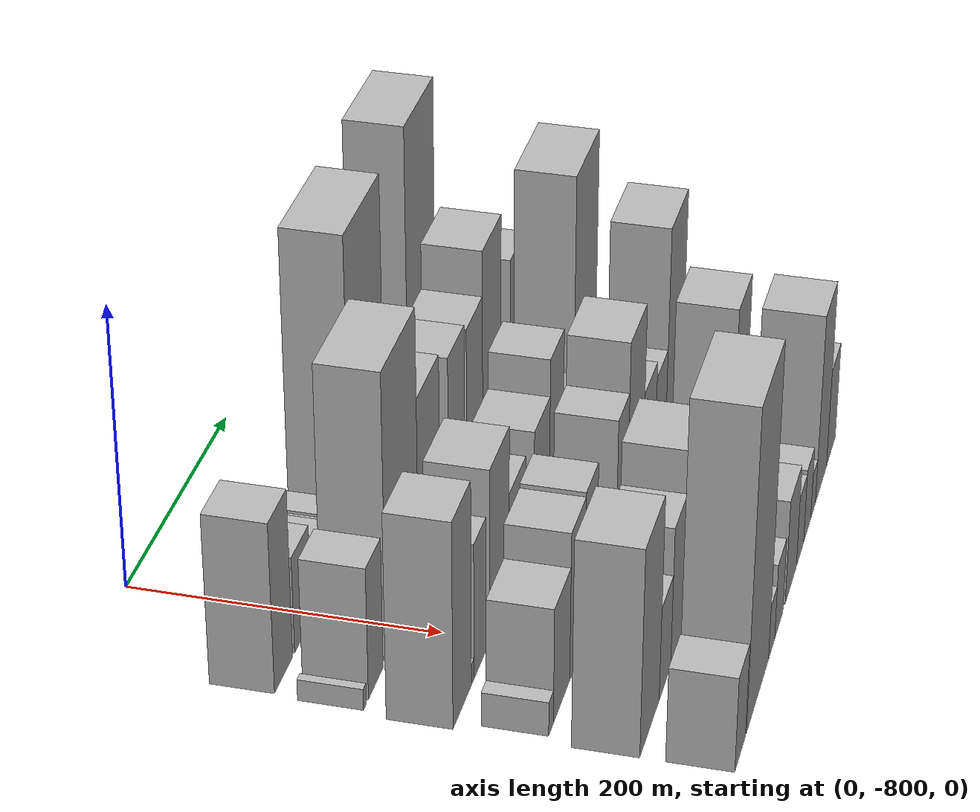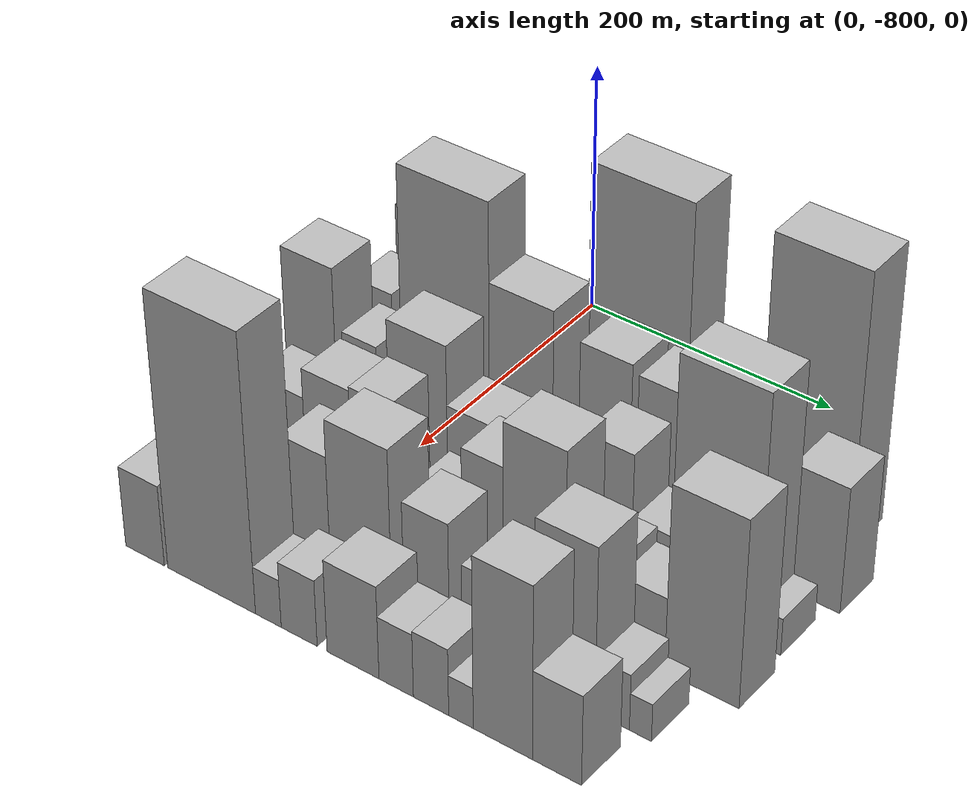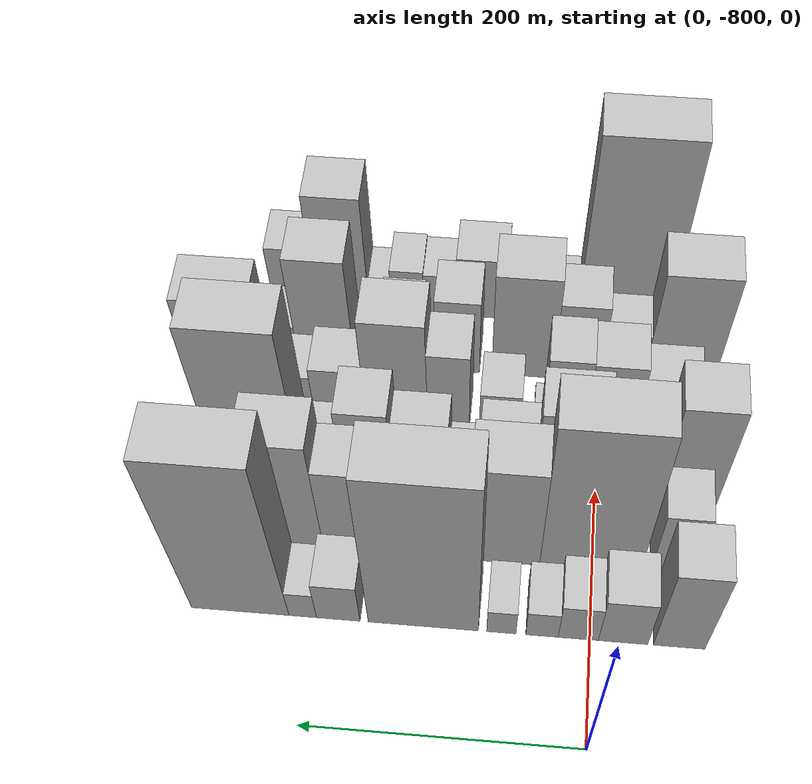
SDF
<sdf version="1.6">
 <world name="default">
  <model name="building_1">
   <static>1</static>
   <pose>100.0000 -863.6245 0 0.000000 0.000000 0.000000</pose>
   <link name="link">
    <pose>0 0 60.00 0 0 0</pose>
    <collision name="collision"><geometry><box><size>40.0000 36.7511 120.0000</size></box></geometry></collision>
    <visual name="visual">
     <cast_shadows>0</cast_shadows>
     <geometry><box><size>40.0000 36.7511 120.0000</size></box></geometry>
     <material>
      <script>
       <uri>model://HANNAS_wall/materials/scripts</uri>
       <uri>model://HANNAS_wall/materials/textures</uri>
       <name>vrc/HANNAS_wall</name>
      </script>
     </material>
    </visual>
   </link>
  </model>
  <model name="building_2">
   <static>1</static>
   <pose>100.0000 -823.6228 0 0.000000 0.000000 0.000000</pose>
   <link name="link">
    <pose>0 0 34.50 0 0 0</pose>
    <collision name="collision"><geometry><box><size>40.0000 35.2522 69.0000</size></box></geometry></collision>
    <visual name="visual">
     <cast_shadows>0</cast_shadows>
     <geometry><box><size>40.0000 35.2522 69.0000</size></box></geometry>
     <material>
      <script>
       <uri>model://HANNAS_wall/materials/scripts</uri>
       <uri>model://HANNAS_wall/materials/textures</uri>
       <name>vrc/HANNAS_wall</name>
      </script>
     </material>
    </visual>
   </link>
  </model>
  <model name="building_3">
   <static>1</static>
   <pose>100.0000 -791.5884 0 0.000000 0.000000 0.000000</pose>
   <link name="link">
    <pose>0 0 27.00 0 0 0</pose>
    <collision name="collision"><geometry><box><size>40.0000 28.8167 54.0000</size></box></geometry></collision>
    <visual name="visual">
     <cast_shadows>0</cast_shadows>
     <geometry><box><size>40.0000 28.8167 54.0000</size></box></geometry>
     <material>
      <script>
       <uri>model://HANNAS_wall/materials/scripts</uri>
       <uri>model://HANNAS_wall/materials/textures</uri>
       <name>vrc/HANNAS_wall</name>
      </script>
     </material>
    </visual>
   </link>
  </model>
  <model name="building_4">
   <static>1</static>
   <pose>100.0000 -765.5253 0 0.000000 0.000000 0.000000</pose>
   <link name="link">
    <pose>0 0 19.50 0 0 0</pose>
    <collision name="collision"><geometry><box><size>40.0000 23.3096 39.0000</size></box></geometry></collision>
    <visual name="visual">
     <cast_shadows>0</cast_shadows>
     <geometry><box><size>40.0000 23.3096 39.0000</size></box></geometry>
     <material>
      <script>
       <uri>model://HANNAS_wall/materials/scripts</uri>
       <uri>model://HANNAS_wall/materials/textures</uri>
       <name>vrc/HANNAS_wall</name>
      </script>
     </material>
    </visual>
   </link>
  </model>
  <model name="building_5">
   <static>1</static>
   <pose>100.0000 -736.3220 0 0.000000 0.000000 0.000000</pose>
   <link name="link">
    <pose>0 0 18.00 0 0 0</pose>
    <collision name="collision"><geometry><box><size>40.0000 21.0969 36.0000</size></box></geometry></collision>
    <visual name="visual">
     <cast_shadows>0</cast_shadows>
     <geometry><box><size>40.0000 21.0969 36.0000</size></box></geometry>
     <material>
      <script>
       <uri>model://HANNAS_wall/materials/scripts</uri>
       <uri>model://HANNAS_wall/materials/textures</uri>
       <name>vrc/HANNAS_wall</name>
      </script>
     </material>
    </visual>
   </link>
  </model>
  <model name="building_6">
   <static>1</static>
   <pose>100.0000 -679.9073 0 0.000000 0.000000 0.000000</pose>
   <link name="link">
    <pose>0 0 109.50 0 0 0</pose>
    <collision name="collision"><geometry><box><size>40.0000 79.7324 219.0000</size></box></geometry></collision>
    <visual name="visual">
     <cast_shadows>0</cast_shadows>
     <geometry><box><size>40.0000 79.7324 219.0000</size></box></geometry>
     <material>
      <script>
       <uri>model://HANNAS_wall/materials/scripts</uri>
       <uri>model://HANNAS_wall/materials/textures</uri>
       <name>vrc/HANNAS_wall</name>
      </script>
     </material>
    </visual>
   </link>
  </model>
  <model name="building_7">
   <static>1</static>
   <pose>100.0000 -618.2458 0 0.000000 0.000000 0.000000</pose>
   <link name="link">
    <pose>0 0 28.50 0 0 0</pose>
    <collision name="collision"><geometry><box><size>40.0000 31.5905 57.0000</size></box></geometry></collision>
    <visual name="visual">
     <cast_shadows>0</cast_shadows>
     <geometry><box><size>40.0000 31.5905 57.0000</size></box></geometry>
     <material>
      <script>
       <uri>model://HANNAS_wall/materials/scripts</uri>
       <uri>model://HANNAS_wall/materials/textures</uri>
       <name>vrc/HANNAS_wall</name>
      </script>
     </material>
    </visual>
   </link>
  </model>
  <model name="building_8">
   <static>1</static>
   <pose>100.0000 -592.3424 0 0.000000 0.000000 0.000000</pose>
   <link name="link">
    <pose>0 0 19.50 0 0 0</pose>
    <collision name="collision"><geometry><box><size>40.0000 20.2162 39.0000</size></box></geometry></collision>
    <visual name="visual">
     <cast_shadows>0</cast_shadows>
     <geometry><box><size>40.0000 20.2162 39.0000</size></box></geometry>
     <material>
      <script>
       <uri>model://HANNAS_wall/materials/scripts</uri>
       <uri>model://HANNAS_wall/materials/textures</uri>
       <name>vrc/HANNAS_wall</name>
      </script>
     </material>
    </visual>
   </link>
  </model>
  <model name="building_9">
   <static>1</static>
   <pose>100.0000 -546.5553 0 0.000000 0.000000 0.000000</pose>
   <link name="link">
    <pose>0 0 111.00 0 0 0</pose>
    <collision name="collision"><geometry><box><size>40.0000 71.3579 222.0000</size></box></geometry></collision>
    <visual name="visual">
     <cast_shadows>0</cast_shadows>
     <geometry><box><size>40.0000 71.3579 222.0000</size></box></geometry>
     <material>
      <script>
       <uri>model://HANNAS_wall/materials/scripts</uri>
       <uri>model://HANNAS_wall/materials/textures</uri>
       <name>vrc/HANNAS_wall</name>
      </script>
     </material>
    </visual>
   </link>
  </model>
  <model name="building_46">
   <static>1</static>
   <pose>155.0000 -881.8193 0 0.000000 0.000000 0.000000</pose>
   <link name="link">
    <pose>0 0 7.50 0 0 0</pose>
    <collision name="collision"><geometry><box><size>40.0000 6.3614 15.0000</size></box></geometry></collision>
    <visual name="visual">
     <cast_shadows>0</cast_shadows>
     <geometry><box><size>40.0000 6.3614 15.0000</size></box></geometry>
     <material>
      <script>
       <uri>model://HANNAS_wall/materials/scripts</uri>
       <uri>model://HANNAS_wall/materials/textures</uri>
       <name>vrc/HANNAS_wall</name>
      </script>
     </material>
    </visual>
   </link>
  </model>
  <model name="building_47">
   <static>1</static>
   <pose>155.0000 -858.5176 0 0.000000 0.000000 0.000000</pose>
   <link name="link">
    <pose>0 0 46.50 0 0 0</pose>
    <collision name="collision"><geometry><box><size>40.0000 32.2419 93.0000</size></box></geometry></collision>
    <visual name="visual">
     <cast_shadows>0</cast_shadows>
     <geometry><box><size>40.0000 32.2419 93.0000</size></box></geometry>
     <material>
      <script>
       <uri>model://HANNAS_wall/materials/scripts</uri>
       <uri>model://HANNAS_wall/materials/textures</uri>
       <name>vrc/HANNAS_wall</name>
      </script>
     </material>
    </visual>
   </link>
  </model>
  <model name="building_48">
   <static>1</static>
   <pose>155.0000 -798.1355 0 0.000000 0.000000 0.000000</pose>
   <link name="link">
    <pose>0 0 100.50 0 0 0</pose>
    <collision name="collision"><geometry><box><size>40.0000 74.5224 201.0000</size></box></geometry></collision>
    <visual name="visual">
     <cast_shadows>0</cast_shadows>
     <geometry><box><size>40.0000 74.5224 201.0000</size></box></geometry>
     <material>
      <script>
       <uri>model://HANNAS_wall/materials/scripts</uri>
       <uri>model://HANNAS_wall/materials/textures</uri>
       <name>vrc/HANNAS_wall</name>
      </script>
     </material>
    </visual>
   </link>
  </model>
  <model name="building_49">
   <static>1</static>
   <pose>155.0000 -734.7934 0 0.000000 0.000000 0.000000</pose>
   <link name="link">
    <pose>0 0 69.00 0 0 0</pose>
    <collision name="collision"><geometry><box><size>40.0000 52.1619 138.0000</size></box></geometry></collision>
    <visual name="visual">
     <cast_shadows>0</cast_shadows>
     <geometry><box><size>40.0000 52.1619 138.0000</size></box></geometry>
     <material>
      <script>
       <uri>model://HANNAS_wall/materials/scripts</uri>
       <uri>model://HANNAS_wall/materials/textures</uri>
       <name>vrc/HANNAS_wall</name>
      </script>
     </material>
    </visual>
   </link>
  </model>
  <model name="building_50">
   <static>1</static>
   <pose>155.0000 -698.1956 0 0.000000 0.000000 0.000000</pose>
   <link name="link">
    <pose>0 0 21.00 0 0 0</pose>
    <collision name="collision"><geometry><box><size>40.0000 21.0338 42.0000</size></box></geometry></collision>
    <visual name="visual">
     <cast_shadows>0</cast_shadows>
     <geometry><box><size>40.0000 21.0338 42.0000</size></box></geometry>
     <material>
      <script>
       <uri>model://HANNAS_wall/materials/scripts</uri>
       <uri>model://HANNAS_wall/materials/textures</uri>
       <name>vrc/HANNAS_wall</name>
      </script>
     </material>
    </visual>
   </link>
  </model>
  <model name="building_51">
   <static>1</static>
   <pose>155.0000 -667.2379 0 0.000000 0.000000 0.000000</pose>
   <link name="link">
    <pose>0 0 61.50 0 0 0</pose>
    <collision name="collision"><geometry><box><size>40.0000 40.8817 123.0000</size></box></geometry></collision>
    <visual name="visual">
     <cast_shadows>0</cast_shadows>
     <geometry><box><size>40.0000 40.8817 123.0000</size></box></geometry>
     <material>
      <script>
       <uri>model://HANNAS_wall/materials/scripts</uri>
       <uri>model://HANNAS_wall/materials/textures</uri>
       <name>vrc/HANNAS_wall</name>
      </script>
     </material>
    </visual>
   </link>
  </model>
  <model name="building_52">
   <static>1</static>
   <pose>155.0000 -620.8911 0 0.000000 0.000000 0.000000</pose>
   <link name="link">
    <pose>0 0 58.50 0 0 0</pose>
    <collision name="collision"><geometry><box><size>40.0000 41.8119 117.0000</size></box></geometry></collision>
    <visual name="visual">
     <cast_shadows>0</cast_shadows>
     <geometry><box><size>40.0000 41.8119 117.0000</size></box></geometry>
     <material>
      <script>
       <uri>model://HANNAS_wall/materials/scripts</uri>
       <uri>model://HANNAS_wall/materials/textures</uri>
       <name>vrc/HANNAS_wall</name>
      </script>
     </material>
    </visual>
   </link>
  </model>
  <model name="building_53">
   <static>1</static>
   <pose>155.0000 -575.1969 0 0.000000 0.000000 0.000000</pose>
   <link name="link">
    <pose>0 0 75.00 0 0 0</pose>
    <collision name="collision"><geometry><box><size>40.0000 49.5766 150.0000</size></box></geometry></collision>
    <visual name="visual">
     <cast_shadows>0</cast_shadows>
     <geometry><box><size>40.0000 49.5766 150.0000</size></box></geometry>
     <material>
      <script>
       <uri>model://HANNAS_wall/materials/scripts</uri>
       <uri>model://HANNAS_wall/materials/textures</uri>
       <name>vrc/HANNAS_wall</name>
      </script>
     </material>
    </visual>
   </link>
  </model>
  <model name="building_54">
   <static>1</static>
   <pose>155.0000 -539.7854 0 0.000000 0.000000 0.000000</pose>
   <link name="link">
    <pose>0 0 19.50 0 0 0</pose>
    <collision name="collision"><geometry><box><size>40.0000 21.2463 39.0000</size></box></geometry></collision>
    <visual name="visual">
     <cast_shadows>0</cast_shadows>
     <geometry><box><size>40.0000 21.2463 39.0000</size></box></geometry>
     <material>
      <script>
       <uri>model://HANNAS_wall/materials/scripts</uri>
       <uri>model://HANNAS_wall/materials/textures</uri>
       <name>vrc/HANNAS_wall</name>
      </script>
     </material>
    </visual>
   </link>
  </model>
  <model name="building_55">
   <static>1</static>
   <pose>155.0000 -504.7969 0 0.000000 0.000000 0.000000</pose>
   <link name="link">
    <pose>0 0 51.00 0 0 0</pose>
    <collision name="collision"><geometry><box><size>40.0000 40.7308 102.0000</size></box></geometry></collision>
    <visual name="visual">
     <cast_shadows>0</cast_shadows>
     <geometry><box><size>40.0000 40.7308 102.0000</size></box></geometry>
     <material>
      <script>
       <uri>model://HANNAS_wall/materials/scripts</uri>
       <uri>model://HANNAS_wall/materials/textures</uri>
       <name>vrc/HANNAS_wall</name>
      </script>
     </material>
    </visual>
   </link>
  </model>
  <model name="building_101">
   <static>1</static>
   <pose>210.0000 -868.3328 0 0.000000 0.000000 0.000000</pose>
   <link name="link">
    <pose>0 0 72.00 0 0 0</pose>
    <collision name="collision"><geometry><box><size>40.0000 43.3345 144.0000</size></box></geometry></collision>
    <visual name="visual">
     <cast_shadows>0</cast_shadows>
     <geometry><box><size>40.0000 43.3345 144.0000</size></box></geometry>
     <material>
      <script>
       <uri>model://HANNAS_wall/materials/scripts</uri>
       <uri>model://HANNAS_wall/materials/textures</uri>
       <name>vrc/HANNAS_wall</name>
      </script>
     </material>
    </visual>
   </link>
  </model>
  <model name="building_102">
   <static>1</static>
   <pose>210.0000 -843.5669 0 0.000000 0.000000 0.000000</pose>
   <link name="link">
    <pose>0 0 7.50 0 0 0</pose>
    <collision name="collision"><geometry><box><size>40.0000 6.1973 15.0000</size></box></geometry></collision>
    <visual name="visual">
     <cast_shadows>0</cast_shadows>
     <geometry><box><size>40.0000 6.1973 15.0000</size></box></geometry>
     <material>
      <script>
       <uri>model://HANNAS_wall/materials/scripts</uri>
       <uri>model://HANNAS_wall/materials/textures</uri>
       <name>vrc/HANNAS_wall</name>
      </script>
     </material>
    </visual>
   </link>
  </model>
  <model name="building_103">
   <static>1</static>
   <pose>210.0000 -825.9588 0 0.000000 0.000000 0.000000</pose>
   <link name="link">
    <pose>0 0 48.00 0 0 0</pose>
    <collision name="collision"><geometry><box><size>40.0000 29.0188 96.0000</size></box></geometry></collision>
    <visual name="visual">
     <cast_shadows>0</cast_shadows>
     <geometry><box><size>40.0000 29.0188 96.0000</size></box></geometry>
     <material>
      <script>
       <uri>model://HANNAS_wall/materials/scripts</uri>
       <uri>model://HANNAS_wall/materials/textures</uri>
       <name>vrc/HANNAS_wall</name>
      </script>
     </material>
    </visual>
   </link>
  </model>
  <model name="building_104">
   <static>1</static>
   <pose>210.0000 -778.0956 0 0.000000 0.000000 0.000000</pose>
   <link name="link">
    <pose>0 0 61.50 0 0 0</pose>
    <collision name="collision"><geometry><box><size>40.0000 48.7075 123.0000</size></box></geometry></collision>
    <visual name="visual">
     <cast_shadows>0</cast_shadows>
     <geometry><box><size>40.0000 48.7075 123.0000</size></box></geometry>
     <material>
      <script>
       <uri>model://HANNAS_wall/materials/scripts</uri>
       <uri>model://HANNAS_wall/materials/textures</uri>
       <name>vrc/HANNAS_wall</name>
      </script>
     </material>
    </visual>
   </link>
  </model>
  <model name="building_105">
   <static>1</static>
   <pose>210.0000 -732.2129 0 0.000000 0.000000 0.000000</pose>
   <link name="link">
    <pose>0 0 37.50 0 0 0</pose>
    <collision name="collision"><geometry><box><size>40.0000 43.0579 75.0000</size></box></geometry></collision>
    <visual name="visual">
     <cast_shadows>0</cast_shadows>
     <geometry><box><size>40.0000 43.0579 75.0000</size></box></geometry>
     <material>
      <script>
       <uri>model://HANNAS_wall/materials/scripts</uri>
       <uri>model://HANNAS_wall/materials/textures</uri>
       <name>vrc/HANNAS_wall</name>
      </script>
     </material>
    </visual>
   </link>
  </model>
  <model name="building_106">
   <static>1</static>
   <pose>210.0000 -699.2016 0 0.000000 0.000000 0.000000</pose>
   <link name="link">
    <pose>0 0 19.50 0 0 0</pose>
    <collision name="collision"><geometry><box><size>40.0000 22.9647 39.0000</size></box></geometry></collision>
    <visual name="visual">
     <cast_shadows>0</cast_shadows>
     <geometry><box><size>40.0000 22.9647 39.0000</size></box></geometry>
     <material>
      <script>
       <uri>model://HANNAS_wall/materials/scripts</uri>
       <uri>model://HANNAS_wall/materials/textures</uri>
       <name>vrc/HANNAS_wall</name>
      </script>
     </material>
    </visual>
   </link>
  </model>
  <model name="building_107">
   <static>1</static>
   <pose>210.0000 -666.4718 0 0.000000 0.000000 0.000000</pose>
   <link name="link">
    <pose>0 0 39.00 0 0 0</pose>
    <collision name="collision"><geometry><box><size>40.0000 42.4951 78.0000</size></box></geometry></collision>
    <visual name="visual">
     <cast_shadows>0</cast_shadows>
     <geometry><box><size>40.0000 42.4951 78.0000</size></box></geometry>
     <material>
      <script>
       <uri>model://HANNAS_wall/materials/scripts</uri>
       <uri>model://HANNAS_wall/materials/textures</uri>
       <name>vrc/HANNAS_wall</name>
      </script>
     </material>
    </visual>
   </link>
  </model>
  <model name="building_108">
   <static>1</static>
   <pose>210.0000 -625.9888 0 0.000000 0.000000 0.000000</pose>
   <link name="link">
    <pose>0 0 52.50 0 0 0</pose>
    <collision name="collision"><geometry><box><size>40.0000 38.4707 105.0000</size></box></geometry></collision>
    <visual name="visual">
     <cast_shadows>0</cast_shadows>
     <geometry><box><size>40.0000 38.4707 105.0000</size></box></geometry>
     <material>
      <script>
       <uri>model://HANNAS_wall/materials/scripts</uri>
       <uri>model://HANNAS_wall/materials/textures</uri>
       <name>vrc/HANNAS_wall</name>
      </script>
     </material>
    </visual>
   </link>
  </model>
  <model name="building_109">
   <static>1</static>
   <pose>210.0000 -591.8014 0 0.000000 0.000000 0.000000</pose>
   <link name="link">
    <pose>0 0 27.00 0 0 0</pose>
    <collision name="collision"><geometry><box><size>40.0000 29.9043 54.0000</size></box></geometry></collision>
    <visual name="visual">
     <cast_shadows>0</cast_shadows>
     <geometry><box><size>40.0000 29.9043 54.0000</size></box></geometry>
     <material>
      <script>
       <uri>model://HANNAS_wall/materials/scripts</uri>
       <uri>model://HANNAS_wall/materials/textures</uri>
       <name>vrc/HANNAS_wall</name>
      </script>
     </material>
    </visual>
   </link>
  </model>
  <model name="building_110">
   <static>1</static>
   <pose>210.0000 -543.9302 0 0.000000 0.000000 0.000000</pose>
   <link name="link">
    <pose>0 0 99.00 0 0 0</pose>
    <collision name="collision"><geometry><box><size>40.0000 65.8381 198.0000</size></box></geometry></collision>
    <visual name="visual">
     <cast_shadows>0</cast_shadows>
     <geometry><box><size>40.0000 65.8381 198.0000</size></box></geometry>
     <material>
      <script>
       <uri>model://HANNAS_wall/materials/scripts</uri>
       <uri>model://HANNAS_wall/materials/textures</uri>
       <name>vrc/HANNAS_wall</name>
      </script>
     </material>
    </visual>
   </link>
  </model>
  <model name="building_111">
   <static>1</static>
   <pose>210.0000 -502.2881 0 0.000000 0.000000 0.000000</pose>
   <link name="link">
    <pose>0 0 15.00 0 0 0</pose>
    <collision name="collision"><geometry><box><size>40.0000 17.4461 30.0000</size></box></geometry></collision>
    <visual name="visual">
     <cast_shadows>0</cast_shadows>
     <geometry><box><size>40.0000 17.4461 30.0000</size></box></geometry>
     <material>
      <script>
       <uri>model://HANNAS_wall/materials/scripts</uri>
       <uri>model://HANNAS_wall/materials/textures</uri>
       <name>vrc/HANNAS_wall</name>
      </script>
     </material>
    </visual>
   </link>
  </model>
  <model name="building_153">
   <static>1</static>
   <pose>265.0000 -877.0085 0 0.000000 0.000000 0.000000</pose>
   <link name="link">
    <pose>0 0 12.00 0 0 0</pose>
    <collision name="collision"><geometry><box><size>40.0000 11.9830 24.0000</size></box></geometry></collision>
    <visual name="visual">
     <cast_shadows>0</cast_shadows>
     <geometry><box><size>40.0000 11.9830 24.0000</size></box></geometry>
     <material>
      <script>
       <uri>model://HANNAS_wall/materials/scripts</uri>
       <uri>model://HANNAS_wall/materials/textures</uri>
       <name>vrc/HANNAS_wall</name>
      </script>
     </material>
    </visual>
   </link>
  </model>
  <model name="building_154">
   <static>1</static>
   <pose>265.0000 -849.7943 0 0.000000 0.000000 0.000000</pose>
   <link name="link">
    <pose>0 0 40.50 0 0 0</pose>
    <collision name="collision"><geometry><box><size>40.0000 42.4454 81.0000</size></box></geometry></collision>
    <visual name="visual">
     <cast_shadows>0</cast_shadows>
     <geometry><box><size>40.0000 42.4454 81.0000</size></box></geometry>
     <material>
      <script>
       <uri>model://HANNAS_wall/materials/scripts</uri>
       <uri>model://HANNAS_wall/materials/textures</uri>
       <name>vrc/HANNAS_wall</name>
      </script>
     </material>
    </visual>
   </link>
  </model>
  <model name="building_155">
   <static>1</static>
   <pose>265.0000 -809.1397 0 0.000000 0.000000 0.000000</pose>
   <link name="link">
    <pose>0 0 52.50 0 0 0</pose>
    <collision name="collision"><geometry><box><size>40.0000 38.8639 105.0000</size></box></geometry></collision>
    <visual name="visual">
     <cast_shadows>0</cast_shadows>
     <geometry><box><size>40.0000 38.8639 105.0000</size></box></geometry>
     <material>
      <script>
       <uri>model://HANNAS_wall/materials/scripts</uri>
       <uri>model://HANNAS_wall/materials/textures</uri>
       <name>vrc/HANNAS_wall</name>
      </script>
     </material>
    </visual>
   </link>
  </model>
  <model name="building_156">
   <static>1</static>
   <pose>265.0000 -773.1990 0 0.000000 0.000000 0.000000</pose>
   <link name="link">
    <pose>0 0 54.00 0 0 0</pose>
    <collision name="collision"><geometry><box><size>40.0000 33.0173 108.0000</size></box></geometry></collision>
    <visual name="visual">
     <cast_shadows>0</cast_shadows>
     <geometry><box><size>40.0000 33.0173 108.0000</size></box></geometry>
     <material>
      <script>
       <uri>model://HANNAS_wall/materials/scripts</uri>
       <uri>model://HANNAS_wall/materials/textures</uri>
       <name>vrc/HANNAS_wall</name>
      </script>
     </material>
    </visual>
   </link>
  </model>
  <model name="building_157">
   <static>1</static>
   <pose>265.0000 -753.2108 0 0.000000 0.000000 0.000000</pose>
   <link name="link">
    <pose>0 0 7.50 0 0 0</pose>
    <collision name="collision"><geometry><box><size>40.0000 6.9592 15.0000</size></box></geometry></collision>
    <visual name="visual">
     <cast_shadows>0</cast_shadows>
     <geometry><box><size>40.0000 6.9592 15.0000</size></box></geometry>
     <material>
      <script>
       <uri>model://HANNAS_wall/materials/scripts</uri>
       <uri>model://HANNAS_wall/materials/textures</uri>
       <name>vrc/HANNAS_wall</name>
      </script>
     </material>
    </visual>
   </link>
  </model>
  <model name="building_158">
   <static>1</static>
   <pose>265.0000 -723.7856 0 0.000000 0.000000 0.000000</pose>
   <link name="link">
    <pose>0 0 27.00 0 0 0</pose>
    <collision name="collision"><geometry><box><size>40.0000 31.8911 54.0000</size></box></geometry></collision>
    <visual name="visual">
     <cast_shadows>0</cast_shadows>
     <geometry><box><size>40.0000 31.8911 54.0000</size></box></geometry>
     <material>
      <script>
       <uri>model://HANNAS_wall/materials/scripts</uri>
       <uri>model://HANNAS_wall/materials/textures</uri>
       <name>vrc/HANNAS_wall</name>
      </script>
     </material>
    </visual>
   </link>
  </model>
  <model name="building_159">
   <static>1</static>
   <pose>265.0000 -683.5607 0 0.000000 0.000000 0.000000</pose>
   <link name="link">
    <pose>0 0 51.00 0 0 0</pose>
    <collision name="collision"><geometry><box><size>40.0000 32.5587 102.0000</size></box></geometry></collision>
    <visual name="visual">
     <cast_shadows>0</cast_shadows>
     <geometry><box><size>40.0000 32.5587 102.0000</size></box></geometry>
     <material>
      <script>
       <uri>model://HANNAS_wall/materials/scripts</uri>
       <uri>model://HANNAS_wall/materials/textures</uri>
       <name>vrc/HANNAS_wall</name>
      </script>
     </material>
    </visual>
   </link>
  </model>
  <model name="building_160">
   <static>1</static>
   <pose>265.0000 -642.9691 0 0.000000 0.000000 0.000000</pose>
   <link name="link">
    <pose>0 0 69.00 0 0 0</pose>
    <collision name="collision"><geometry><box><size>40.0000 48.6245 138.0000</size></box></geometry></collision>
    <visual name="visual">
     <cast_shadows>0</cast_shadows>
     <geometry><box><size>40.0000 48.6245 138.0000</size></box></geometry>
     <material>
      <script>
       <uri>model://HANNAS_wall/materials/scripts</uri>
       <uri>model://HANNAS_wall/materials/textures</uri>
       <name>vrc/HANNAS_wall</name>
      </script>
     </material>
    </visual>
   </link>
  </model>
  <model name="building_161">
   <static>1</static>
   <pose>265.0000 -598.4714 0 0.000000 0.000000 0.000000</pose>
   <link name="link">
    <pose>0 0 36.00 0 0 0</pose>
    <collision name="collision"><geometry><box><size>40.0000 40.3708 72.0000</size></box></geometry></collision>
    <visual name="visual">
     <cast_shadows>0</cast_shadows>
     <geometry><box><size>40.0000 40.3708 72.0000</size></box></geometry>
     <material>
      <script>
       <uri>model://HANNAS_wall/materials/scripts</uri>
       <uri>model://HANNAS_wall/materials/textures</uri>
       <name>vrc/HANNAS_wall</name>
      </script>
     </material>
    </visual>
   </link>
  </model>
  <model name="building_162">
   <static>1</static>
   <pose>265.0000 -560.6384 0 0.000000 0.000000 0.000000</pose>
   <link name="link">
    <pose>0 0 30.00 0 0 0</pose>
    <collision name="collision"><geometry><box><size>40.0000 35.2953 60.0000</size></box></geometry></collision>
    <visual name="visual">
     <cast_shadows>0</cast_shadows>
     <geometry><box><size>40.0000 35.2953 60.0000</size></box></geometry>
     <material>
      <script>
       <uri>model://HANNAS_wall/materials/scripts</uri>
       <uri>model://HANNAS_wall/materials/textures</uri>
       <name>vrc/HANNAS_wall</name>
      </script>
     </material>
    </visual>
   </link>
  </model>
  <model name="building_163">
   <static>1</static>
   <pose>265.0000 -515.6331 0 0.000000 0.000000 0.000000</pose>
   <link name="link">
    <pose>0 0 75.00 0 0 0</pose>
    <collision name="collision"><geometry><box><size>40.0000 54.7153 150.0000</size></box></geometry></collision>
    <visual name="visual">
     <cast_shadows>0</cast_shadows>
     <geometry><box><size>40.0000 54.7153 150.0000</size></box></geometry>
     <material>
      <script>
       <uri>model://HANNAS_wall/materials/scripts</uri>
       <uri>model://HANNAS_wall/materials/textures</uri>
       <name>vrc/HANNAS_wall</name>
      </script>
     </material>
    </visual>
   </link>
  </model>
  <model name="building_206">
   <static>1</static>
   <pose>320.0000 -862.4425 0 0.000000 0.000000 0.000000</pose>
   <link name="link">
    <pose>0 0 72.00 0 0 0</pose>
    <collision name="collision"><geometry><box><size>40.0000 55.1149 144.0000</size></box></geometry></collision>
    <visual name="visual">
     <cast_shadows>0</cast_shadows>
     <geometry><box><size>40.0000 55.1149 144.0000</size></box></geometry>
     <material>
      <script>
       <uri>model://HANNAS_wall/materials/scripts</uri>
       <uri>model://HANNAS_wall/materials/textures</uri>
       <name>vrc/HANNAS_wall</name>
      </script>
     </material>
    </visual>
   </link>
  </model>
  <model name="building_207">
   <static>1</static>
   <pose>320.0000 -817.8560 0 0.000000 0.000000 0.000000</pose>
   <link name="link">
    <pose>0 0 33.00 0 0 0</pose>
    <collision name="collision"><geometry><box><size>40.0000 34.0582 66.0000</size></box></geometry></collision>
    <visual name="visual">
     <cast_shadows>0</cast_shadows>
     <geometry><box><size>40.0000 34.0582 66.0000</size></box></geometry>
     <material>
      <script>
       <uri>model://HANNAS_wall/materials/scripts</uri>
       <uri>model://HANNAS_wall/materials/textures</uri>
       <name>vrc/HANNAS_wall</name>
      </script>
     </material>
    </visual>
   </link>
  </model>
  <model name="building_208">
   <static>1</static>
   <pose>320.0000 -782.1211 0 0.000000 0.000000 0.000000</pose>
   <link name="link">
    <pose>0 0 49.50 0 0 0</pose>
    <collision name="collision"><geometry><box><size>40.0000 37.4116 99.0000</size></box></geometry></collision>
    <visual name="visual">
     <cast_shadows>0</cast_shadows>
     <geometry><box><size>40.0000 37.4116 99.0000</size></box></geometry>
     <material>
      <script>
       <uri>model://HANNAS_wall/materials/scripts</uri>
       <uri>model://HANNAS_wall/materials/textures</uri>
       <name>vrc/HANNAS_wall</name>
      </script>
     </material>
    </visual>
   </link>
  </model>
  <model name="building_209">
   <static>1</static>
   <pose>320.0000 -738.5668 0 0.000000 0.000000 0.000000</pose>
   <link name="link">
    <pose>0 0 64.50 0 0 0</pose>
    <collision name="collision"><geometry><box><size>40.0000 49.6970 129.0000</size></box></geometry></collision>
    <visual name="visual">
     <cast_shadows>0</cast_shadows>
     <geometry><box><size>40.0000 49.6970 129.0000</size></box></geometry>
     <material>
      <script>
       <uri>model://HANNAS_wall/materials/scripts</uri>
       <uri>model://HANNAS_wall/materials/textures</uri>
       <name>vrc/HANNAS_wall</name>
      </script>
     </material>
    </visual>
   </link>
  </model>
  <model name="building_210">
   <static>1</static>
   <pose>320.0000 -685.8339 0 0.000000 0.000000 0.000000</pose>
   <link name="link">
    <pose>0 0 46.50 0 0 0</pose>
    <collision name="collision"><geometry><box><size>40.0000 35.7689 93.0000</size></box></geometry></collision>
    <visual name="visual">
     <cast_shadows>0</cast_shadows>
     <geometry><box><size>40.0000 35.7689 93.0000</size></box></geometry>
     <material>
      <script>
       <uri>model://HANNAS_wall/materials/scripts</uri>
       <uri>model://HANNAS_wall/materials/textures</uri>
       <name>vrc/HANNAS_wall</name>
      </script>
     </material>
    </visual>
   </link>
  </model>
  <model name="building_211">
   <static>1</static>
   <pose>320.0000 -641.1679 0 0.000000 0.000000 0.000000</pose>
   <link name="link">
    <pose>0 0 33.00 0 0 0</pose>
    <collision name="collision"><geometry><box><size>40.0000 33.5631 66.0000</size></box></geometry></collision>
    <visual name="visual">
     <cast_shadows>0</cast_shadows>
     <geometry><box><size>40.0000 33.5631 66.0000</size></box></geometry>
     <material>
      <script>
       <uri>model://HANNAS_wall/materials/scripts</uri>
       <uri>model://HANNAS_wall/materials/textures</uri>
       <name>vrc/HANNAS_wall</name>
      </script>
     </material>
    </visual>
   </link>
  </model>
  <model name="building_212">
   <static>1</static>
   <pose>320.0000 -615.8216 0 0.000000 0.000000 0.000000</pose>
   <link name="link">
    <pose>0 0 16.50 0 0 0</pose>
    <collision name="collision"><geometry><box><size>40.0000 17.1295 33.0000</size></box></geometry></collision>
    <visual name="visual">
     <cast_shadows>0</cast_shadows>
     <geometry><box><size>40.0000 17.1295 33.0000</size></box></geometry>
     <material>
      <script>
       <uri>model://HANNAS_wall/materials/scripts</uri>
       <uri>model://HANNAS_wall/materials/textures</uri>
       <name>vrc/HANNAS_wall</name>
      </script>
     </material>
    </visual>
   </link>
  </model>
  <model name="building_213">
   <static>1</static>
   <pose>320.0000 -579.4058 0 0.000000 0.000000 0.000000</pose>
   <link name="link">
    <pose>0 0 66.00 0 0 0</pose>
    <collision name="collision"><geometry><box><size>40.0000 45.7021 132.0000</size></box></geometry></collision>
    <visual name="visual">
     <cast_shadows>0</cast_shadows>
     <geometry><box><size>40.0000 45.7021 132.0000</size></box></geometry>
     <material>
      <script>
       <uri>model://HANNAS_wall/materials/scripts</uri>
       <uri>model://HANNAS_wall/materials/textures</uri>
       <name>vrc/HANNAS_wall</name>
      </script>
     </material>
    </visual>
   </link>
  </model>
  <model name="building_214">
   <static>1</static>
   <pose>320.0000 -543.8519 0 0.000000 0.000000 0.000000</pose>
   <link name="link">
    <pose>0 0 22.50 0 0 0</pose>
    <collision name="collision"><geometry><box><size>40.0000 25.4056 45.0000</size></box></geometry></collision>
    <visual name="visual">
     <cast_shadows>0</cast_shadows>
     <geometry><box><size>40.0000 25.4056 45.0000</size></box></geometry>
     <material>
      <script>
       <uri>model://HANNAS_wall/materials/scripts</uri>
       <uri>model://HANNAS_wall/materials/textures</uri>
       <name>vrc/HANNAS_wall</name>
      </script>
     </material>
    </visual>
   </link>
  </model>
  <model name="building_215">
   <static>1</static>
   <pose>320.0000 -523.0719 0 0.000000 0.000000 0.000000</pose>
   <link name="link">
    <pose>0 0 15.00 0 0 0</pose>
    <collision name="collision"><geometry><box><size>40.0000 16.1544 30.0000</size></box></geometry></collision>
    <visual name="visual">
     <cast_shadows>0</cast_shadows>
     <geometry><box><size>40.0000 16.1544 30.0000</size></box></geometry>
     <material>
      <script>
       <uri>model://HANNAS_wall/materials/scripts</uri>
       <uri>model://HANNAS_wall/materials/textures</uri>
       <name>vrc/HANNAS_wall</name>
      </script>
     </material>
    </visual>
   </link>
  </model>
  <model name="building_256">
   <static>1</static>
   <pose>375.0000 -873.3421 0 0.000000 0.000000 0.000000</pose>
   <link name="link">
    <pose>0 0 33.00 0 0 0</pose>
    <collision name="collision"><geometry><box><size>40.0000 33.3158 66.0000</size></box></geometry></collision>
    <visual name="visual">
     <cast_shadows>0</cast_shadows>
     <geometry><box><size>40.0000 33.3158 66.0000</size></box></geometry>
     <material>
      <script>
       <uri>model://HANNAS_wall/materials/scripts</uri>
       <uri>model://HANNAS_wall/materials/textures</uri>
       <name>vrc/HANNAS_wall</name>
      </script>
     </material>
    </visual>
   </link>
  </model>
  <model name="building_257">
   <static>1</static>
   <pose>375.0000 -816.7661 0 0.000000 0.000000 0.000000</pose>
   <link name="link">
    <pose>0 0 111.00 0 0 0</pose>
    <collision name="collision"><geometry><box><size>40.0000 73.8363 222.0000</size></box></geometry></collision>
    <visual name="visual">
     <cast_shadows>0</cast_shadows>
     <geometry><box><size>40.0000 73.8363 222.0000</size></box></geometry>
     <material>
      <script>
       <uri>model://HANNAS_wall/materials/scripts</uri>
       <uri>model://HANNAS_wall/materials/textures</uri>
       <name>vrc/HANNAS_wall</name>
      </script>
     </material>
    </visual>
   </link>
  </model>
  <model name="building_258">
   <static>1</static>
   <pose>375.0000 -769.2577 0 0.000000 0.000000 0.000000</pose>
   <link name="link">
    <pose>0 0 19.50 0 0 0</pose>
    <collision name="collision"><geometry><box><size>40.0000 21.1805 39.0000</size></box></geometry></collision>
    <visual name="visual">
     <cast_shadows>0</cast_shadows>
     <geometry><box><size>40.0000 21.1805 39.0000</size></box></geometry>
     <material>
      <script>
       <uri>model://HANNAS_wall/materials/scripts</uri>
       <uri>model://HANNAS_wall/materials/textures</uri>
       <name>vrc/HANNAS_wall</name>
      </script>
     </material>
    </visual>
   </link>
  </model>
  <model name="building_259">
   <static>1</static>
   <pose>375.0000 -744.0891 0 0.000000 0.000000 0.000000</pose>
   <link name="link">
    <pose>0 0 27.00 0 0 0</pose>
    <collision name="collision"><geometry><box><size>40.0000 29.1567 54.0000</size></box></geometry></collision>
    <visual name="visual">
     <cast_shadows>0</cast_shadows>
     <geometry><box><size>40.0000 29.1567 54.0000</size></box></geometry>
     <material>
      <script>
       <uri>model://HANNAS_wall/materials/scripts</uri>
       <uri>model://HANNAS_wall/materials/textures</uri>
       <name>vrc/HANNAS_wall</name>
      </script>
     </material>
    </visual>
   </link>
  </model>
  <model name="building_260">
   <static>1</static>
   <pose>375.0000 -700.9003 0 0.000000 0.000000 0.000000</pose>
   <link name="link">
    <pose>0 0 37.50 0 0 0</pose>
    <collision name="collision"><geometry><box><size>40.0000 41.2209 75.0000</size></box></geometry></collision>
    <visual name="visual">
     <cast_shadows>0</cast_shadows>
     <geometry><box><size>40.0000 41.2209 75.0000</size></box></geometry>
     <material>
      <script>
       <uri>model://HANNAS_wall/materials/scripts</uri>
       <uri>model://HANNAS_wall/materials/textures</uri>
       <name>vrc/HANNAS_wall</name>
      </script>
     </material>
    </visual>
   </link>
  </model>
  <model name="building_261">
   <static>1</static>
   <pose>375.0000 -666.8530 0 0.000000 0.000000 0.000000</pose>
   <link name="link">
    <pose>0 0 25.50 0 0 0</pose>
    <collision name="collision"><geometry><box><size>40.0000 26.8737 51.0000</size></box></geometry></collision>
    <visual name="visual">
     <cast_shadows>0</cast_shadows>
     <geometry><box><size>40.0000 26.8737 51.0000</size></box></geometry>
     <material>
      <script>
       <uri>model://HANNAS_wall/materials/scripts</uri>
       <uri>model://HANNAS_wall/materials/textures</uri>
       <name>vrc/HANNAS_wall</name>
      </script>
     </material>
    </visual>
   </link>
  </model>
  <model name="building_262">
   <static>1</static>
   <pose>375.0000 -639.8457 0 0.000000 0.000000 0.000000</pose>
   <link name="link">
    <pose>0 0 27.00 0 0 0</pose>
    <collision name="collision"><geometry><box><size>40.0000 27.1410 54.0000</size></box></geometry></collision>
    <visual name="visual">
     <cast_shadows>0</cast_shadows>
     <geometry><box><size>40.0000 27.1410 54.0000</size></box></geometry>
     <material>
      <script>
       <uri>model://HANNAS_wall/materials/scripts</uri>
       <uri>model://HANNAS_wall/materials/textures</uri>
       <name>vrc/HANNAS_wall</name>
      </script>
     </material>
    </visual>
   </link>
  </model>
  <model name="building_263">
   <static>1</static>
   <pose>375.0000 -616.9262 0 0.000000 0.000000 0.000000</pose>
   <link name="link">
    <pose>0 0 16.50 0 0 0</pose>
    <collision name="collision"><geometry><box><size>40.0000 18.6979 33.0000</size></box></geometry></collision>
    <visual name="visual">
     <cast_shadows>0</cast_shadows>
     <geometry><box><size>40.0000 18.6979 33.0000</size></box></geometry>
     <material>
      <script>
       <uri>model://HANNAS_wall/materials/scripts</uri>
       <uri>model://HANNAS_wall/materials/textures</uri>
       <name>vrc/HANNAS_wall</name>
      </script>
     </material>
    </visual>
   </link>
  </model>
  <model name="building_264">
   <static>1</static>
   <pose>375.0000 -585.3987 0 0.000000 0.000000 0.000000</pose>
   <link name="link">
    <pose>0 0 69.00 0 0 0</pose>
    <collision name="collision"><geometry><box><size>40.0000 44.3572 138.0000</size></box></geometry></collision>
    <visual name="visual">
     <cast_shadows>0</cast_shadows>
     <geometry><box><size>40.0000 44.3572 138.0000</size></box></geometry>
     <material>
      <script>
       <uri>model://HANNAS_wall/materials/scripts</uri>
       <uri>model://HANNAS_wall/materials/textures</uri>
       <name>vrc/HANNAS_wall</name>
      </script>
     </material>
    </visual>
   </link>
  </model>
  <model name="building_265">
   <static>1</static>
   <pose>375.0000 -545.2150 0 0.000000 0.000000 0.000000</pose>
   <link name="link">
    <pose>0 0 36.00 0 0 0</pose>
    <collision name="collision"><geometry><box><size>40.0000 36.0101 72.0000</size></box></geometry></collision>
    <visual name="visual">
     <cast_shadows>0</cast_shadows>
     <geometry><box><size>40.0000 36.0101 72.0000</size></box></geometry>
     <material>
      <script>
       <uri>model://HANNAS_wall/materials/scripts</uri>
       <uri>model://HANNAS_wall/materials/textures</uri>
       <name>vrc/HANNAS_wall</name>
      </script>
     </material>
    </visual>
   </link>
  </model>
 </world>
</sdf>
